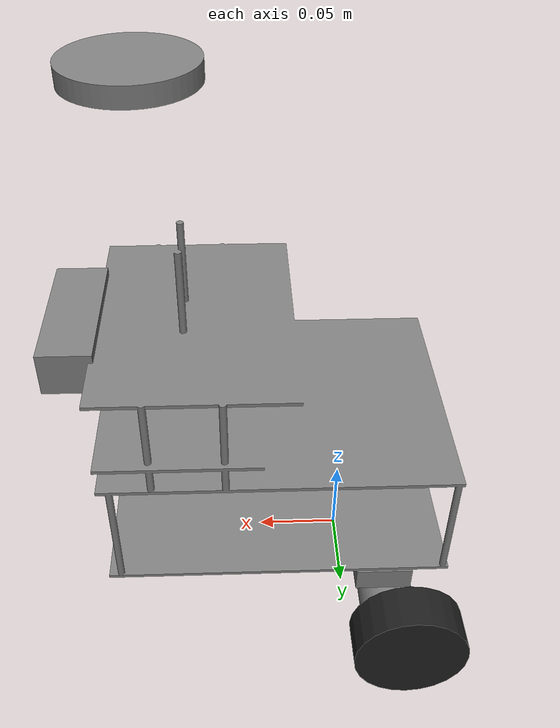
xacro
<?xml version="1.0"?>
<robot name="KWJBot" xmlns:xacro="http://ros.org/wiki/xacro">
    <xacro:include filename="$(find kwj_description)/urdf/kwj.gazebo.xacro"/>

    <link name="base_footprint"/>

    <link name="base_link">
      <inertial>
        <origin xyz="0 0 0" rpy="0 0 0"/>
        <mass value="0.01"/>
        <inertia ixx="5.259e-03" ixy="5.470e-05" ixz="3.567e-04"
                 iyy="5.710e-03" iyz="5.603e-06"
                 izz="5.524e-02" />
        </inertial>

      <collision>
        <origin xyz="0 0 0" rpy="0 0 0"/>
        <geometry>
          <box size="0.155 0.2 0.15"/>
        </geometry>
      </collision>

      <visual>
        <origin xyz="-0.025 0 -0.02" rpy="0 0 0"/>
        <geometry>
          <mesh filename="package://kwj_description/meshes/base_link.stl" scale="1.0 1.0 1.0"/>
        </geometry>
        <material name="grey">
          <color rgba="0.5 0.5 0.5 1"/>
        </material>
      </visual>
    </link>

    <joint name="base_joint" type="fixed">
         <parent link="base_footprint"/>
         <child link="base_link"/>
         <origin xyz="0 0 0.065" rpy="0 0 0"/>
      </joint>

    <joint name="camera_joint" type="fixed">
      <parent link="base_link"/>
      <child link="camera_link"/>
      <origin xyz="0.15 0 0.115" rpy="0 0 0"/>
    </joint>

    <link name="camera_link">
      <visual>
        <origin xyz="0 0 0" rpy="0 0 0"/>
        <geometry>
          <mesh filename="package://kwj_description/meshes/camera_gazebo.stl" scale="1.0 1.0 1.0"/>
        </geometry>
        <material name="grey">
          <color rgba="0.5 0.5 0.5 1"/>
        </material>
      </visual>
      <collision>
        <origin xyz="0.015 0 -0.0065" rpy="0 0 0"/>
        <geometry>
          <box size="0.05 0.05 0.025"/>
        </geometry>
      </collision>
      <inertial>
        <mass value="3.07365e-05"/>
        <origin xyz="0 0 0" rpy="0 0 0"/>
        <inertia ixx="3.073649974518707e-05" iyy="8.101563506798558e-06" izz="4.316406649983658e-05" ixy="0" ixz="0" iyz="0"/>
      </inertial>
    </link>

     <joint name="wheel_left_joint" type="continuous">
      <parent link="base_link"/>
      <child link="wheel_left_link"/>
      <origin xyz="-0.0335 0.106 -0.0515" rpy="-1.57 0 0"/>
      <axis xyz="0 0 1"/>
     </joint>

     <link name="wheel_left_link">
      <visual>
        <origin xyz="0 0 0" rpy="0 0 1.57"/>
          <geometry>
           <cylinder length="0.026" radius="0.0335"/>
          </geometry>
        <material name="dark"/>
      </visual>

      <collision>
        <origin xyz="0 0 0" rpy="0 0 0"/>
        <geometry>
          <cylinder length="0.026" radius="0.0335"/>
        </geometry>
      </collision>

      <inertial>
        <origin xyz="0 0 0" />
        <mass value="0.1004" />
        <inertia ixx="3.3800152140578693e-05" ixy="4.91450e-11" ixz="3.68838e-09"
                 iyy="5.628900326021782e-05"  iyz="4.91450e-11"
                 izz="3.380015380915577e-05" />
       </inertial>
    </link>

     <joint name="wheel_right_joint" type="continuous">
      <parent link="base_link"/>
      <child link="wheel_right_link"/>
      <origin xyz="-0.0335 -0.106 -0.0515" rpy="-1.57 0 0"/>
      <axis xyz="0 0 1"/>
     </joint>

     <link name="wheel_right_link">
      <visual>
        <origin xyz="0 0 0" rpy="0 0 1.57"/>
         <geometry>
           <cylinder length="0.026" radius="0.0335"/>
         </geometry>
        <material name="dark"/>
      </visual>

      <collision>
        <origin xyz="0 0 0" rpy="0 0 0"/>
        <geometry>
          <cylinder length="0.026" radius="0.0335"/>
        </geometry>
      </collision>

      <inertial>
        <origin xyz="0 0 0" />
        <mass value="0.1004" />
        <inertia ixx="3.3800152140578693e-05" ixy="4.91450e-11" ixz="3.68838e-09"
                 iyy="5.628900326021782e-05" iyz="4.91450e-11"
                 izz="3.380015380915577e-05" />
        </inertial>
    </link>

    <joint name="caster_front_joint" type="fixed">
      <parent link="base_link"/>
      <child link="caster_front_link"/>
      <origin xyz="0.115 -0.005 -0.07" rpy="-1.57 0 0"/>
    </joint>

    <link name="caster_front_link">

      <visual>
        <origin xyz="0 0 0" rpy="1.57 0 1.57"/>
        <geometry>
          <mesh filename="package://kwj_description/meshes/caster_gazebo.stl" scale="1.0 1.0 1.0"/>
        </geometry>
        <material name="grey">
          <color rgba="0.5 0.5 0.5 1"/>
        </material>
      </visual>

      <collision>
        <origin xyz="0 0.001 0" rpy="0 0 0"/>
        <geometry>
          <cylinder length="0.016" radius="0.015"/>
        </geometry>
      </collision>

      <inertial>
        <origin xyz="0 0 0" />
        <mass value="0.01439" />
        <inertia ixx="1.21919e-06" ixy="0" ixz="0"
                 iyy="2.19848e-06" iyz="0"
                 izz="1.21919e-06" />
      </inertial>
    </link>

     <joint name="imu_joint" type="fixed">
      <parent link="base_link"/>
      <child link="imu_link"/>
      <origin xyz="-0.07 0 0" rpy="0 0 0"/>
     </joint>

     <link name="imu_link"/>

     <joint name="scan_joint" type="fixed">
      <parent link="base_link"/>
      <child link="laser_link"/>
      <origin xyz="0.11 0 0.25" rpy="0 0 0"/>
     </joint>

     <link name="laser_link">
      <visual>
        <origin xyz="0 0 0" rpy="0 0 0"/>
        <geometry>
          <mesh filename="package://kwj_description/meshes/lidar_gazebo.stl" scale="1.0 1.0 1.0"/>
        </geometry>
        <material name="grey">
          <color rgba="0.5 0.5 0.5 1"/>
        </material>
      </visual>

      <collision>
        <origin xyz="-0.015 0 -0.0065" rpy="0 0 0"/>
        <geometry>
          <cylinder length="0.0105" radius="0.03435"/>
        </geometry>
      </collision>

      <inertial>
        <mass value="0.04659" />
        <origin xyz="0 0 0" />
        <inertia ixx="1.41344e-05" ixy="0" ixz="0"
                 iyy="1.40144e-05" iyz="0"
                 izz="2.74129e-05" />
      </inertial>
    </link>

</robot>
